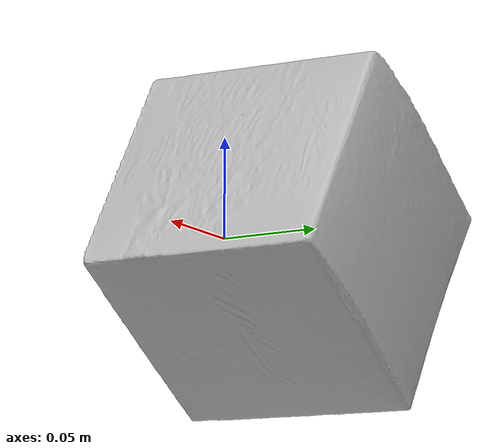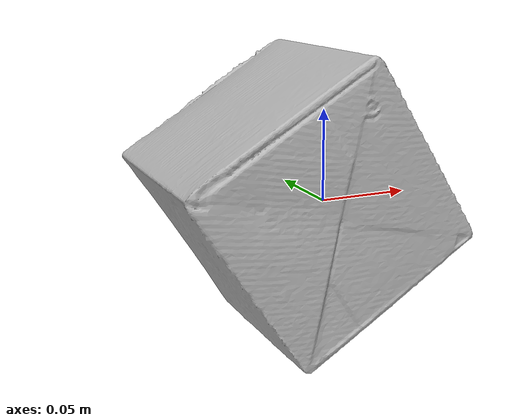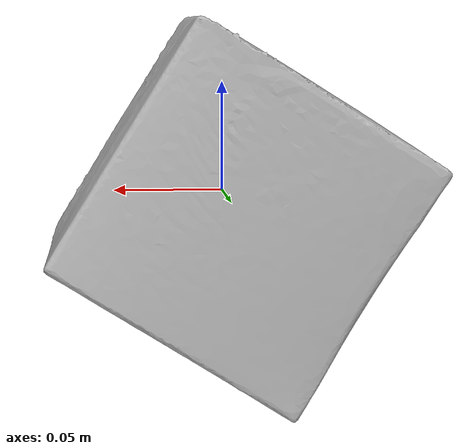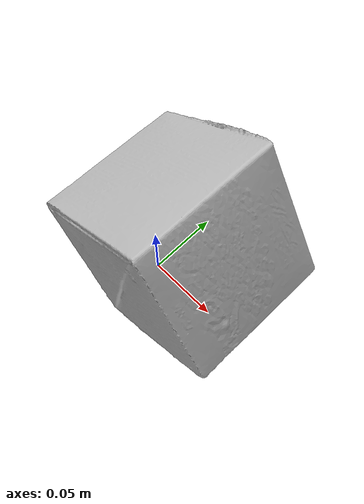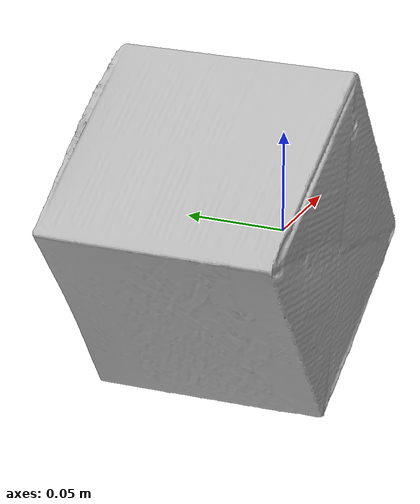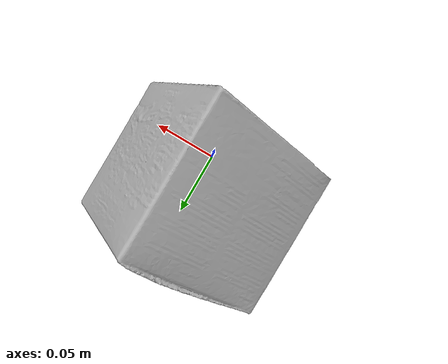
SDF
<?xml version='1.0'?>
<sdf version="1.4">
  <model name="CoffeeBox">
    <static>false</static>
    <link name="link">
      <inertial>
        <pose>-0.004247196748159944 0.030154488775427087 -0.002760691362603279 1.7402100486508405 -0.36606438983511547 -0.16533948384865169</pose>
        <mass>0.18837600820664613</mass>
        <inertia>
          <ixx>0.00047554492714730473</ixx>
          <ixy>9.431749635258622e-20</ixy>
          <ixz>-5.604777128439607e-20</ixz>
          <iyy>0.00047552556893201296</iyy>
          <iyz>-1.4738606432399752e-20</iyz>
          <izz>0.0004704519599268548</izz>
        </inertia>
      </inertial>
      <collision name="collision">
        <geometry>
          <mesh>
            <!-- Use a downsampled mesh for collisions -->
            <uri>model:///CoffeeBox/CoffeeBox_250_collision.obj</uri>
	        </mesh>
        </geometry>
        <surface>
      </surface>
      </collision>
      <visual name="visual">
        <geometry>
          <mesh>
            <uri>model:///CoffeeBox/CoffeeBox_25k_tex.obj</uri>
	        </mesh>
        </geometry>
        <material>
          <script>
            <uri>model:///CoffeeBox/CoffeeBox.material</uri>
            <name>CoffeeBox</name>
          </script>
        </material>
      </visual>
    </link>
  </model>
</sdf>
